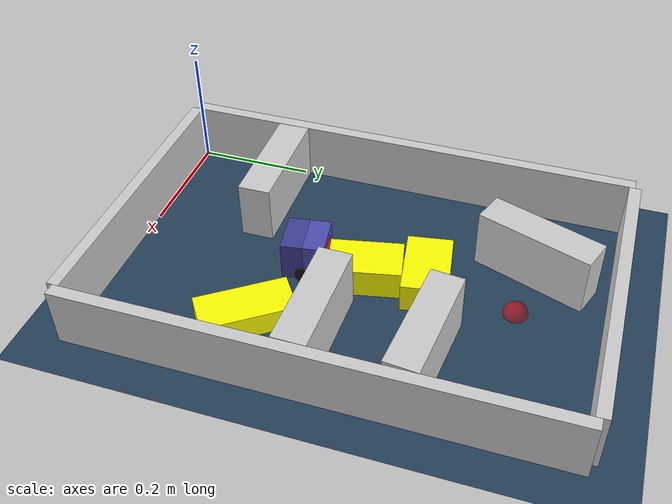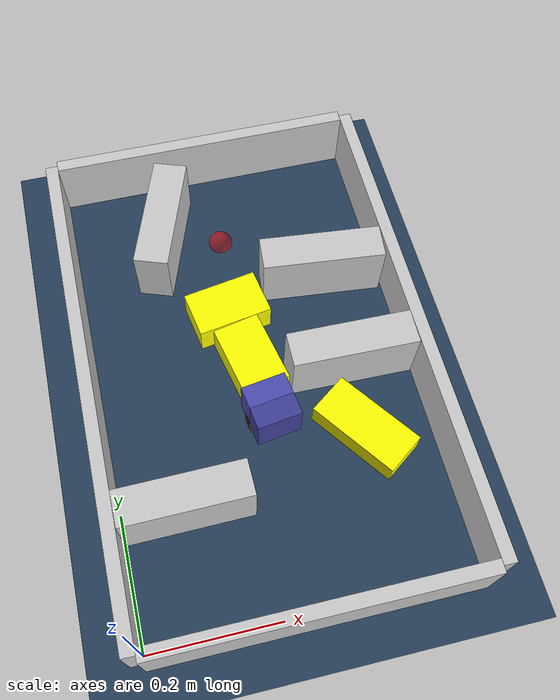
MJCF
<?xml version='1.0' encoding='utf-8'?>
<mujoco model="real_buildable">
  <compiler angle="degree" />
  <option timestep="0.002" integrator="implicitfast" iterations="100" cone="elliptic" />
  <default>
    <geom density="1" />
  </default>
  <asset>
    <texture builtin="gradient" height="3072" rgb1="0.3 0.5 0.7" rgb2="0 0 0" type="skybox" width="512" />
    <texture builtin="checker" height="300" mark="edge" markrgb="0.8 0.8 0.8" name="groundplane" rgb1="0.2 0.3 0.4" rgb2="0.1 0.2 0.3" type="2d" width="300" />
    <material name="groundplane" reflectance="0.2" texrepeat="5 5" texture="groundplane" texuniform="true" />
  </asset>
  <worldbody>
    <light dir="0 0 -1" directional="true" pos="0 0 1.5" />
    <geom name="floor" type="plane" condim="4" friction="0.5 0.005 0.001" material="groundplane" size="0 0 0.05" />
    <body name="walls">
      <geom name="wall_boundary_left" type="box" condim="4" friction="1.0 0.005 0.0001" rgba="0.8 0.8 0.8 1" pos="-0.010000 0.387500 0.050000" euler="0 0 0.000000" size="0.010000 0.397500 0.050000" />
      <geom name="wall_boundary_right" type="box" condim="4" friction="1.0 0.005 0.0001" rgba="0.8 0.8 0.8 1" pos="0.500000 0.387500 0.050000" euler="0 0 0.000000" size="0.010000 0.397500 0.050000" />
      <geom name="wall_boundary_bottom" type="box" condim="4" friction="1.0 0.005 0.0001" rgba="0.8 0.8 0.8 1" pos="0.245000 -0.010000 0.050000" euler="0 0 0.000000" size="0.245000 0.010000 0.050000" />
      <geom name="wall_boundary_top" type="box" condim="4" friction="1.0 0.005 0.0001" rgba="0.8 0.8 0.8 1" pos="0.245000 0.785000 0.050000" euler="0 0 0.000000" size="0.245000 0.010000 0.050000" />
      <geom name="wall_inner_1" type="box" condim="4" friction="1.0 0.005 0.0001" rgba="0.8 0.8 0.8 1" pos="0.097808 0.183074 0.050000" euler="0 0 0.654098" size="0.097500 0.027500 0.050000" />
      <geom name="wall_inner_2" type="box" condim="4" friction="1.0 0.005 0.0001" rgba="0.8 0.8 0.8 1" pos="0.392076 0.360205 0.050000" euler="0 0 -0.908587" size="0.097500 0.027500 0.050000" />
      <geom name="wall_inner_3" type="box" condim="4" friction="1.0 0.005 0.0001" rgba="0.8 0.8 0.8 1" pos="0.390000 0.528000 0.050000" euler="0 0 174.400000" size="0.097500 0.027500 0.050000" />
      <geom name="wall_inner_4" type="box" condim="4" friction="1.0 0.005 0.0001" rgba="0.8 0.8 0.8 1" pos="0.152000 0.654000 0.050000" euler="0 0 70.200000" size="0.097500 0.027500 0.050000" />
    </body>
    <body name="car" pos="0.25113950795978146 0.29679591875202882 0.01" quat="0.65280578954111224 0 0 0.75752531386192312">
      <freejoint name="car_freejoint" />
      <inertial pos="0 0 0.0375" mass="0.35" diaginertia="0.000266 0.000266 0.000286" />
      <geom name="front_chassis_collision" type="box" pos="0.0175 0 0.0375" size="0.0175 0.035 0.0325" rgba="0.3 0.3 0.7 1" />
      <geom name="rear_chassis_collision" type="box" pos="-0.0175 0 0.0375" size="0.0175 0.035 0.0325" rgba="0.25 0.25 0.6 1" />
      <geom name="front_marker" type="box" pos="0.034 0 0.0505" size="0.002 0.015 0.01" rgba="1 0.2 0.2 1" contype="0" conaffinity="0" />
      <body name="rear_support_body" pos="-0.03 0 0.0025">
        <joint name="rear_caster_joint" type="ball" damping="0.0001" />
        <inertial pos="0 0 0" mass="0.025" diaginertia="0.000001 0.000001 0.000001" />
        <geom name="rear_support" type="sphere" pos="0 0 0" size="0.0025" friction="0 0 0" rgba="0.7 0.1 0.1 1" />
      </body>
      <body name="front_support_body" pos="0.03 0 0.0025">
        <joint name="front_caster_joint" type="ball" damping="0.0001" />
        <inertial pos="0 0 0" mass="0.025" diaginertia="0.000001 0.000001 0.000001" />
        <geom name="front_support" type="sphere" pos="0 0 0" size="0.0025" friction="0 0 0" rgba="0.1 0.7 0.1 1" />
      </body>
      <body name="left_wheel" pos="0 0.0375 0.015">
        <inertial pos="0 0 0" mass="0.05" diaginertia="0.000003 0.000006 0.000003" />
        <joint name="left_wheel_joint" type="hinge" axis="0 1 0" damping="0.01" armature="0.0001" />
        <geom name="left_wheel_collision" type="cylinder" size="0.015 0.0005" euler="90 0 0" rgba="0.1 0.1 0.1 1" />
      </body>
      <body name="right_wheel" pos="0 -0.0375 0.015">
        <inertial pos="0 0 0" mass="0.05" diaginertia="0.000003 0.000006 0.000003" />
        <joint name="right_wheel_joint" type="hinge" axis="0 1 0" damping="0.01" armature="0.0001" />
        <geom name="right_wheel_collision" type="cylinder" size="0.015 0.0005" euler="90 0 0" rgba="0.1 0.1 0.1 1" />
      </body>
    </body>
    <body name="obstacle_0_movable">
      <geom name="obstacle_0_movable" condim="4" pos="0.24250297870850557 0.39352798118715659 0.025000000000000001" friction="1 0.005 0.0001" rgba="1 1 0 1" size="0.037500 0.060000 0.025000" type="box" mass="0.1" quat="0.99478032671778793 0 0 0.10203970587595322" />
      <joint type="free" />
    </body>
    <body name="obstacle_1_movable">
      <geom name="obstacle_1_movable" condim="4" pos="0.22614999702538247 0.49112701493772076 0.025000000000000001" friction="1 0.005 0.0001" rgba="1 1 0 1" size="0.037500 0.060000 0.025000" type="box" mass="0.1" quat="0.76233157931800899 0 0 -0.64718665250027374" />
      <joint type="free" />
    </body>
    <body name="obstacle_2_movable">
      <geom name="obstacle_2_movable" condim="4" pos="0.38613199999999825 0.24498899999999887 0.02" friction="1 0.005 0.0001" rgba="1 1 0 1" size="0.035000 0.075000 0.020000" type="box" mass="0.1" quat="0.95180641351910933 0 0 0.30669944764197138" />
      <joint type="free" />
    </body>
    <site name="goal" type="sphere" pos="0.245000 0.640000 0.0" size="0.02" rgba="1 0 0 0.5" />
  </worldbody>
  <actuator>
    <velocity name="left_wheel_drive" joint="left_wheel_joint" ctrlrange="-25 25" kv="0.75" forcerange="-0.5 0.5" />
    <velocity name="right_wheel_drive" joint="right_wheel_joint" ctrlrange="-25 25" kv="0.75" forcerange="-0.5 0.5" />
  </actuator>
</mujoco>
